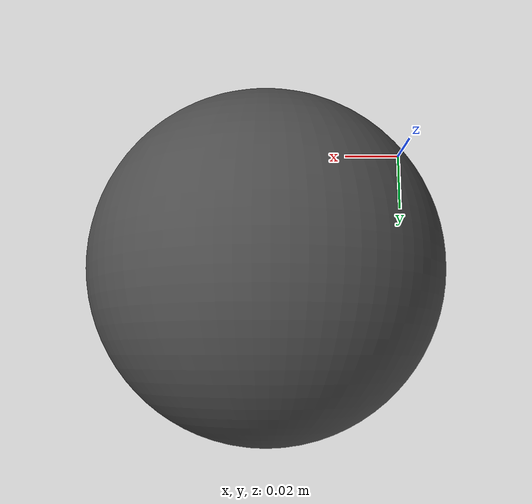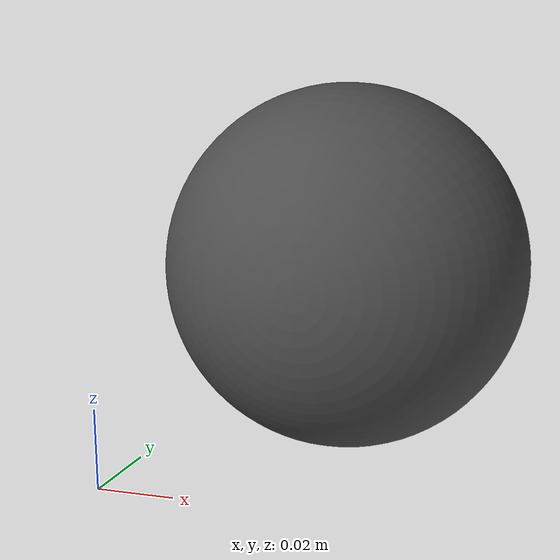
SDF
<sdf version='1.6'>
  <model name='modular_beta'>
    <link name='base_link'>
      <pose frame=''>0 0 0 0 -0 0</pose>
      <collision name='base_link_inertia_collision'>
        <pose frame=''>0 0 0 0 -0 0</pose>
        <geometry>
          <mesh>
            <scale>0.001 0.001 0.001</scale>
            <uri>model://modular_description/meshes/Sphere_test.STL</uri>
          </mesh>
        </geometry>
        <surface>
          <contact>
            <ode>
              <min_depth>0.001</min_depth>
              <max_vel>0</max_vel>
            </ode>
          </contact>
          <friction>
            <ode/>
          </friction>
        </surface>
      </collision>
      <visual name='base_link_inertia_visual'>
        <pose frame=''>0 0 0 0 -0 0</pose>
        <geometry>
          <mesh>
            <scale>0.001 0.001 0.001</scale>
            <uri>model://modular_description/meshes/Sphere_test.STL</uri>
          </mesh>
        </geometry>
        <material>
          <script>
            <name>Gazebo/DarkGrey</name>
            <uri>file://media/materials/scripts/gazebo.material</uri>
          </script>
        </material>
      </visual>
      <gravity>1</gravity>
      <velocity_decay/>
    </link>
  </model>
</sdf>
